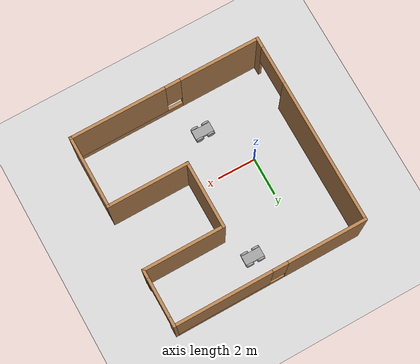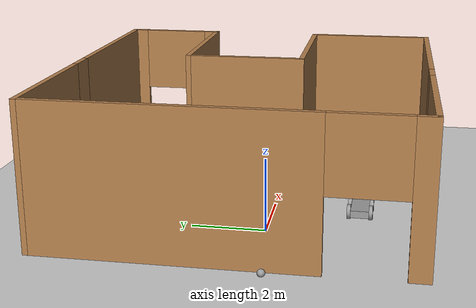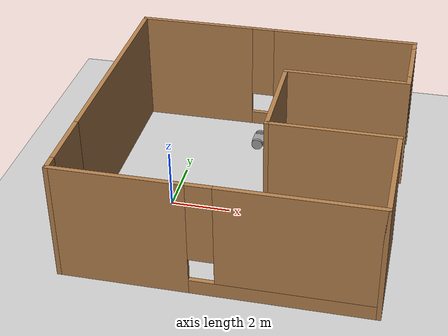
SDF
<sdf version="1.6">
 <world name="default">
  <plugin name="welcome" filename="libwelcome.so"/>
  <light name="sun" type="directional">
   <pose>0 0 10 0 -0 0</pose>
   <diffuse>0.8 0.8 0.8 1</diffuse>
   <specular>0.2 0.2 0.2 1</specular>
   <attenuation>
    <range>1000</range>
    <constant>0.9</constant>
    <linear>0.01</linear>
    <quadratic>0.001</quadratic>
   </attenuation>
   <direction>-0.5 0.1 -0.9</direction>
  </light>
  <model name="ground_plane">
   <static>1</static>
   <link name="link">
    <collision name="collision">
     <geometry><plane><normal>0 0 1</normal><size>100 100</size></plane></geometry>
     <surface>
      <contact><collide_bitmask>65535</collide_bitmask></contact>
      <friction><ode><mu>100</mu><mu2>50</mu2></ode></friction>
     </surface>
    </collision>
    <visual name="visual">
     <cast_shadows>0</cast_shadows>
     <geometry><plane><normal>0 0 1</normal><size>100 100</size></plane></geometry>
     <material>
      <script><uri>file://media/materials/scripts/gazebo.material</uri><name>Gazebo/Grey</name></script>
     </material>
    </visual>
   </link>
  </model>
  <gravity>0 0 -9.8</gravity>
  <magnetic_field>6e-06 2.3e-05 -4.2e-05</magnetic_field>
  <atmosphere type="adiabatic"/>
  <physics name="default_physics" default="0" type="ode">
   <max_step_size>0.001</max_step_size>
   <real_time_factor>1</real_time_factor>
   <real_time_update_rate>1000</real_time_update_rate>
  </physics>
  <scene><ambient>0.4 0.4 0.4 1</ambient><background>0.7 0.7 0.7 1</background><shadows>1</shadows></scene>
  <spherical_coordinates>
   <surface_model>EARTH_WGS84</surface_model>
   <latitude_deg>0</latitude_deg>
   <longitude_deg>0</longitude_deg>
   <elevation>0</elevation>
   <heading_deg>0</heading_deg>
  </spherical_coordinates>
  <model name="proj_mod">
   <pose>2.50882 0.745695 0 0 -0 0</pose>
   <link name="Wall_0">
    <pose>-4.925 0 0 0 0 -1.5708</pose>
    <visual name="Wall_0_Visual_0">
     <pose>-1.28045 0 2 0 -0 0</pose>
     <geometry><box><size>7.43909 0.15 4</size></box></geometry>
     <material>
      <script><uri>file://media/materials/scripts/gazebo.material</uri><name>Gazebo/Wood</name></script>
      <ambient>0.666667 0 0 1</ambient>
     </material>
     <meta><layer>0</layer></meta>
    </visual>
    <collision name="Wall_0_Collision_0">
     <geometry><box><size>7.43909 0.15 4</size></box></geometry>
     <pose>-1.28045 0 2 0 -0 0</pose>
    </collision>
    <visual name="Wall_0_Visual_1">
     <pose>4.71955 0 2 0 -0 0</pose>
     <geometry><box><size>0.560906 0.15 4</size></box></geometry>
     <material>
      <script><uri>file://media/materials/scripts/gazebo.material</uri><name>Gazebo/Wood</name></script>
      <ambient>0.666667 0 0 1</ambient>
     </material>
     <meta><layer>0</layer></meta>
    </visual>
    <collision name="Wall_0_Collision_1">
     <geometry><box><size>0.560906 0.15 4</size></box></geometry>
     <pose>4.71955 0 2 0 -0 0</pose>
    </collision>
    <visual name="Wall_0_Visual_2">
     <pose>3.43909 0 3 0 -0 0</pose>
     <geometry><box><size>2 0.15 2</size></box></geometry>
     <material>
      <script><uri>file://media/materials/scripts/gazebo.material</uri><name>Gazebo/Wood</name></script>
      <ambient>0.666667 0 0 1</ambient>
     </material>
     <meta><layer>0</layer></meta>
    </visual>
    <collision name="Wall_0_Collision_2">
     <geometry><box><size>2 0.15 2</size></box></geometry>
     <pose>3.43909 0 3 0 -0 0</pose>
    </collision>
   </link>
   <link name="Wall_11">
    <collision name="Wall_11_Collision">
     <geometry><box><size>3.5 0.15 4</size></box></geometry>
     <pose>0 0 2 0 -0 0</pose>
    </collision>
    <visual name="Wall_11_Visual">
     <pose>0 0 2 0 -0 0</pose>
     <geometry><box><size>3.5 0.15 4</size></box></geometry>
     <material>
      <script><uri>file://media/materials/scripts/gazebo.material</uri><name>Gazebo/Wood</name></script>
      <ambient>0.333333 0 0 1</ambient>
     </material>
     <meta><layer>0</layer></meta>
    </visual>
    <pose>0.825001 0.4 0 0 0 -1.5708</pose>
   </link>
   <link name="Wall_16">
    <collision name="Wall_16_Collision">
     <geometry><box><size>3.75 0.15 4</size></box></geometry>
     <pose>0 0 2 0 -0 0</pose>
    </collision>
    <visual name="Wall_16_Visual">
     <pose>0 0 2 0 -0 0</pose>
     <geometry><box><size>3.75 0.15 4</size></box></geometry>
     <material>
      <script><uri>file://media/materials/scripts/gazebo.material</uri><name>Gazebo/Wood</name></script>
      <ambient>0.666667 0 0 1</ambient>
     </material>
     <meta><layer>0</layer></meta>
    </visual>
    <pose>4.925 -3.125 0 0 -0 1.5708</pose>
   </link>
   <link name="Wall_19">
    <collision name="Wall_19_Collision">
     <geometry><box><size>4.25 0.15 4</size></box></geometry>
     <pose>0 0 2 0 -0 0</pose>
    </collision>
    <visual name="Wall_19_Visual">
     <pose>0 0 2 0 -0 0</pose>
     <geometry><box><size>4.25 0.15 4</size></box></geometry>
     <material>
      <script><uri>file://media/materials/scripts/gazebo.material</uri><name>Gazebo/Wood</name></script>
      <ambient>0.666667 0 0 1</ambient>
     </material>
     <meta><layer>0</layer></meta>
    </visual>
    <pose>2.875 -1.275 0 0 -0 0</pose>
   </link>
   <link name="Wall_3">
    <pose>0 -4.925 0 0 -0 0</pose>
    <visual name="Wall_3_Visual_0">
     <pose>-2.8988 0 2 0 -0 0</pose>
     <geometry><box><size>4.20241 0.15 4</size></box></geometry>
     <material>
      <script><uri>file://media/materials/scripts/gazebo.material</uri><name>Gazebo/Wood</name></script>
      <ambient>0.666667 0 0 1</ambient>
     </material>
     <meta><layer>0</layer></meta>
    </visual>
    <collision name="Wall_3_Collision_0">
     <geometry><box><size>4.20241 0.15 4</size></box></geometry>
     <pose>-2.8988 0 2 0 -0 0</pose>
    </collision>
    <visual name="Wall_3_Visual_1">
     <pose>2.1012 0 0.25 0 -0 0</pose>
     <geometry><box><size>5.79759 0.15 0.5</size></box></geometry>
     <material>
      <script><uri>file://media/materials/scripts/gazebo.material</uri><name>Gazebo/Wood</name></script>
      <ambient>0.666667 0 0 1</ambient>
     </material>
     <meta><layer>0</layer></meta>
    </visual>
    <collision name="Wall_3_Collision_1">
     <geometry><box><size>5.79759 0.15 0.5</size></box></geometry>
     <pose>2.1012 0 0.25 0 -0 0</pose>
    </collision>
    <visual name="Wall_3_Visual_2">
     <pose>2.5012 0 2.25 0 -0 0</pose>
     <geometry><box><size>4.99759 0.15 3.5</size></box></geometry>
     <material>
      <script><uri>file://media/materials/scripts/gazebo.material</uri><name>Gazebo/Wood</name></script>
      <ambient>0.666667 0 0 1</ambient>
     </material>
     <meta><layer>0</layer></meta>
    </visual>
    <collision name="Wall_3_Collision_2">
     <geometry><box><size>4.99759 0.15 3.5</size></box></geometry>
     <pose>2.5012 0 2.25 0 -0 0</pose>
    </collision>
    <visual name="Wall_3_Visual_3">
     <pose>-0.397593 0 2.65 0 -0 0</pose>
     <geometry><box><size>0.8 0.15 2.7</size></box></geometry>
     <material>
      <script><uri>file://media/materials/scripts/gazebo.material</uri><name>Gazebo/Wood</name></script>
      <ambient>0.666667 0 0 1</ambient>
     </material>
     <meta><layer>0</layer></meta>
    </visual>
    <collision name="Wall_3_Collision_3">
     <geometry><box><size>0.8 0.15 2.7</size></box></geometry>
     <pose>-0.397593 0 2.65 0 -0 0</pose>
    </collision>
   </link>
   <link name="Wall_5">
    <pose>0 4.925 0 0 -0 0</pose>
    <visual name="Wall_5_Visual_0">
     <pose>-2.94691 0 2 0 -0 0</pose>
     <geometry><box><size>4.10618 0.15 4</size></box></geometry>
     <material>
      <script><uri>file://media/materials/scripts/gazebo.material</uri><name>Gazebo/Wood</name></script>
      <ambient>0.666667 0 0 1</ambient>
     </material>
     <meta><layer>0</layer></meta>
    </visual>
    <collision name="Wall_5_Collision_0">
     <geometry><box><size>4.10618 0.15 4</size></box></geometry>
     <pose>-2.94691 0 2 0 -0 0</pose>
    </collision>
    <visual name="Wall_5_Visual_1">
     <pose>2.05309 0 0.25 0 -0 0</pose>
     <geometry><box><size>5.89382 0.15 0.5</size></box></geometry>
     <material>
      <script><uri>file://media/materials/scripts/gazebo.material</uri><name>Gazebo/Wood</name></script>
      <ambient>0.666667 0 0 1</ambient>
     </material>
     <meta><layer>0</layer></meta>
    </visual>
    <collision name="Wall_5_Collision_1">
     <geometry><box><size>5.89382 0.15 0.5</size></box></geometry>
     <pose>2.05309 0 0.25 0 -0 0</pose>
    </collision>
    <visual name="Wall_5_Visual_2">
     <pose>2.45309 0 2.25 0 -0 0</pose>
     <geometry><box><size>5.09382 0.15 3.5</size></box></geometry>
     <material>
      <script><uri>file://media/materials/scripts/gazebo.material</uri><name>Gazebo/Wood</name></script>
      <ambient>0.666667 0 0 1</ambient>
     </material>
     <meta><layer>0</layer></meta>
    </visual>
    <collision name="Wall_5_Collision_2">
     <geometry><box><size>5.09382 0.15 3.5</size></box></geometry>
     <pose>2.45309 0 2.25 0 -0 0</pose>
    </collision>
    <visual name="Wall_5_Visual_3">
     <pose>-0.493816 0 2.65 0 -0 0</pose>
     <geometry><box><size>0.8 0.15 2.7</size></box></geometry>
     <material>
      <script><uri>file://media/materials/scripts/gazebo.material</uri><name>Gazebo/Wood</name></script>
      <ambient>0.666667 0 0 1</ambient>
     </material>
     <meta><layer>0</layer></meta>
    </visual>
    <collision name="Wall_5_Collision_3">
     <geometry><box><size>0.8 0.15 2.7</size></box></geometry>
     <pose>-0.493816 0 2.65 0 -0 0</pose>
    </collision>
   </link>
   <link name="Wall_7">
    <pose>4.925 3.5 0 0 0 -1.5708</pose>
    <visual name="Wall_7_Visual_0">
     <pose>-1.24533 0 2 0 -0 0</pose>
     <geometry><box><size>0.509342 0.15 4</size></box></geometry>
     <material>
      <script><uri>file://media/materials/scripts/gazebo.material</uri><name>Gazebo/Wood</name></script>
      <ambient>0.996078 0.47451 0.0196078 1</ambient>
     </material>
     <meta><layer>0</layer></meta>
    </visual>
    <collision name="Wall_7_Collision_0">
     <geometry><box><size>0.509342 0.15 4</size></box></geometry>
     <pose>-1.24533 0 2 0 -0 0</pose>
    </collision>
    <visual name="Wall_7_Visual_1">
     <pose>1.25467 0 2 0 -0 0</pose>
     <geometry><box><size>0.490658 0.15 4</size></box></geometry>
     <material>
      <script><uri>file://media/materials/scripts/gazebo.material</uri><name>Gazebo/Wood</name></script>
      <ambient>0.996078 0.47451 0.0196078 1</ambient>
     </material>
     <meta><layer>0</layer></meta>
    </visual>
    <collision name="Wall_7_Collision_1">
     <geometry><box><size>0.490658 0.15 4</size></box></geometry>
     <pose>1.25467 0 2 0 -0 0</pose>
    </collision>
    <visual name="Wall_7_Visual_2">
     <pose>0.009342 0 3 0 -0 0</pose>
     <geometry><box><size>2 0.15 2</size></box></geometry>
     <material>
      <script><uri>file://media/materials/scripts/gazebo.material</uri><name>Gazebo/Wood</name></script>
      <ambient>0.996078 0.47451 0.0196078 1</ambient>
     </material>
     <meta><layer>0</layer></meta>
    </visual>
    <collision name="Wall_7_Collision_2">
     <geometry><box><size>2 0.15 2</size></box></geometry>
     <pose>0.009342 0 3 0 -0 0</pose>
    </collision>
   </link>
   <link name="Wall_9">
    <collision name="Wall_9_Collision">
     <geometry><box><size>4.25 0.15 4</size></box></geometry>
     <pose>0 0 2 0 -0 0</pose>
    </collision>
    <visual name="Wall_9_Visual">
     <pose>0 0 2 0 -0 0</pose>
     <geometry><box><size>4.25 0.15 4</size></box></geometry>
     <material>
      <script><uri>file://media/materials/scripts/gazebo.material</uri><name>Gazebo/Wood</name></script>
      <ambient>0.333333 0 0 1</ambient>
     </material>
     <meta><layer>0</layer></meta>
    </visual>
    <pose>2.875 2.075 0 0 -0 3.14159</pose>
   </link>
   <static>1</static>
  </model>
  <model name="final_4w">
   <link name="link_0">
    <inertial>
     <mass>1</mass>
     <inertia>
      <ixx>0.166667</ixx>
      <ixy>0</ixy>
      <ixz>0</ixz>
      <iyy>0.166667</iyy>
      <iyz>0</iyz>
      <izz>0.166667</izz>
     </inertia>
    </inertial>
    <visual name="visual">
     <geometry><box><size>1 0.5 0.2</size></box></geometry>
     <material>
      <lighting>1</lighting>
      <script><uri>file://media/materials/scripts/gazebo.material</uri><name>Gazebo/Grey</name></script>
      <shader type="pixel"><normal_map>__default__</normal_map></shader>
      <ambient>0.3 0.3 0.3 1</ambient>
      <diffuse>0.7 0.7 0.7 1</diffuse>
      <specular>0.01 0.01 0.01 1</specular>
      <emissive>0 0 0 1</emissive>
     </material>
    </visual>
    <collision name="collision">
     <geometry><box><size>1 0.5 0.2</size></box></geometry>
     <surface>
      <friction>
       <ode><mu>1</mu><mu2>1</mu2><fdir1>0 0 0</fdir1><slip1>0</slip1><slip2>0</slip2></ode>
       <torsional>
        <coefficient>1</coefficient>
        <patch_radius>0</patch_radius>
        <surface_radius>0</surface_radius>
        <use_patch_radius>1</use_patch_radius>
        <ode><slip>0</slip></ode>
       </torsional>
      </friction>
      <bounce><restitution_coefficient>0</restitution_coefficient><threshold>1e+06</threshold></bounce>
      <contact>
       <collide_without_contact>0</collide_without_contact>
       <collide_without_contact_bitmask>1</collide_without_contact_bitmask>
       <collide_bitmask>1</collide_bitmask>
       <ode>
        <soft_cfm>0</soft_cfm>
        <soft_erp>0.2</soft_erp>
        <kp>1e+13</kp>
        <kd>1</kd>
        <max_vel>0.01</max_vel>
        <min_depth>0</min_depth>
       </ode>
       <bullet>
        <split_impulse>1</split_impulse>
        <split_impulse_penetration_threshold>-0.01</split_impulse_penetration_threshold>
        <soft_cfm>0</soft_cfm>
        <soft_erp>0.2</soft_erp>
        <kp>1e+13</kp>
        <kd>1</kd>
       </bullet>
      </contact>
     </surface>
    </collision>
   </link>
   <link name="link_1">
    <pose>-0.3 -0.300019 0 1.5707 -0 0</pose>
    <inertial>
     <mass>1</mass>
     <inertia><ixx>0.145833</ixx><ixy>0</ixy><ixz>0</ixz><iyy>0.145833</iyy><iyz>0</iyz><izz>0.125</izz></inertia>
    </inertial>
    <visual name="visual">
     <geometry><cylinder><radius>0.2</radius><length>0.1</length></cylinder></geometry>
     <material>
      <lighting>1</lighting>
      <script><uri>file://media/materials/scripts/gazebo.material</uri><name>Gazebo/Grey</name></script>
      <shader type="pixel"><normal_map>__default__</normal_map></shader>
      <ambient>0.3 0.3 0.3 1</ambient>
      <diffuse>0.7 0.7 0.7 1</diffuse>
      <specular>0.01 0.01 0.01 1</specular>
      <emissive>0 0 0 1</emissive>
     </material>
    </visual>
    <collision name="collision">
     <geometry><cylinder><radius>0.2</radius><length>0.1</length></cylinder></geometry>
     <surface>
      <friction>
       <ode><mu>1</mu><mu2>1</mu2><fdir1>0 0 0</fdir1><slip1>0</slip1><slip2>0</slip2></ode>
       <torsional>
        <coefficient>1</coefficient>
        <patch_radius>0</patch_radius>
        <surface_radius>0</surface_radius>
        <use_patch_radius>1</use_patch_radius>
        <ode><slip>0</slip></ode>
       </torsional>
      </friction>
      <bounce><restitution_coefficient>0</restitution_coefficient><threshold>1e+06</threshold></bounce>
      <contact>
       <collide_without_contact>0</collide_without_contact>
       <collide_without_contact_bitmask>1</collide_without_contact_bitmask>
       <collide_bitmask>1</collide_bitmask>
       <ode>
        <soft_cfm>0</soft_cfm>
        <soft_erp>0.2</soft_erp>
        <kp>1e+13</kp>
        <kd>1</kd>
        <max_vel>0.01</max_vel>
        <min_depth>0</min_depth>
       </ode>
       <bullet>
        <split_impulse>1</split_impulse>
        <split_impulse_penetration_threshold>-0.01</split_impulse_penetration_threshold>
        <soft_cfm>0</soft_cfm>
        <soft_erp>0.2</soft_erp>
        <kp>1e+13</kp>
        <kd>1</kd>
       </bullet>
      </contact>
     </surface>
    </collision>
   </link>
   <link name="link_1_clone">
    <pose>0.3 -0.300019 0 1.5707 -0 0</pose>
    <inertial>
     <mass>1</mass>
     <inertia><ixx>0.145833</ixx><ixy>0</ixy><ixz>0</ixz><iyy>0.145833</iyy><iyz>0</iyz><izz>0.125</izz></inertia>
    </inertial>
    <visual name="visual">
     <geometry><cylinder><radius>0.2</radius><length>0.1</length></cylinder></geometry>
     <material>
      <lighting>1</lighting>
      <script><uri>file://media/materials/scripts/gazebo.material</uri><name>Gazebo/Grey</name></script>
      <shader type="pixel"><normal_map>__default__</normal_map></shader>
      <ambient>0.3 0.3 0.3 1</ambient>
      <diffuse>0.7 0.7 0.7 1</diffuse>
      <specular>0.01 0.01 0.01 1</specular>
      <emissive>0 0 0 1</emissive>
     </material>
    </visual>
    <collision name="collision">
     <geometry><cylinder><radius>0.2</radius><length>0.1</length></cylinder></geometry>
     <surface>
      <friction>
       <ode><mu>1</mu><mu2>1</mu2><fdir1>0 0 0</fdir1><slip1>0</slip1><slip2>0</slip2></ode>
       <torsional>
        <coefficient>1</coefficient>
        <patch_radius>0</patch_radius>
        <surface_radius>0</surface_radius>
        <use_patch_radius>1</use_patch_radius>
        <ode><slip>0</slip></ode>
       </torsional>
      </friction>
      <bounce><restitution_coefficient>0</restitution_coefficient><threshold>1e+06</threshold></bounce>
      <contact>
       <collide_without_contact>0</collide_without_contact>
       <collide_without_contact_bitmask>1</collide_without_contact_bitmask>
       <collide_bitmask>1</collide_bitmask>
       <ode>
        <soft_cfm>0</soft_cfm>
        <soft_erp>0.2</soft_erp>
        <kp>1e+13</kp>
        <kd>1</kd>
        <max_vel>0.01</max_vel>
        <min_depth>0</min_depth>
       </ode>
       <bullet>
        <split_impulse>1</split_impulse>
        <split_impulse_penetration_threshold>-0.01</split_impulse_penetration_threshold>
        <soft_cfm>0</soft_cfm>
        <soft_erp>0.2</soft_erp>
        <kp>1e+13</kp>
        <kd>1</kd>
       </bullet>
      </contact>
     </surface>
    </collision>
   </link>
   <link name="link_1_clone_0">
    <pose>-0.3 0.300019 0 1.5707 -0 0</pose>
    <inertial>
     <mass>1</mass>
     <inertia><ixx>0.145833</ixx><ixy>0</ixy><ixz>0</ixz><iyy>0.145833</iyy><iyz>0</iyz><izz>0.125</izz></inertia>
    </inertial>
    <visual name="visual">
     <geometry><cylinder><radius>0.2</radius><length>0.1</length></cylinder></geometry>
     <material>
      <lighting>1</lighting>
      <script><uri>file://media/materials/scripts/gazebo.material</uri><name>Gazebo/Grey</name></script>
      <shader type="pixel"><normal_map>__default__</normal_map></shader>
      <ambient>0.3 0.3 0.3 1</ambient>
      <diffuse>0.7 0.7 0.7 1</diffuse>
      <specular>0.01 0.01 0.01 1</specular>
      <emissive>0 0 0 1</emissive>
     </material>
    </visual>
    <collision name="collision">
     <geometry><cylinder><radius>0.2</radius><length>0.1</length></cylinder></geometry>
     <surface>
      <friction>
       <ode><mu>1</mu><mu2>1</mu2><fdir1>0 0 0</fdir1><slip1>0</slip1><slip2>0</slip2></ode>
       <torsional>
        <coefficient>1</coefficient>
        <patch_radius>0</patch_radius>
        <surface_radius>0</surface_radius>
        <use_patch_radius>1</use_patch_radius>
        <ode><slip>0</slip></ode>
       </torsional>
      </friction>
      <bounce><restitution_coefficient>0</restitution_coefficient><threshold>1e+06</threshold></bounce>
      <contact>
       <collide_without_contact>0</collide_without_contact>
       <collide_without_contact_bitmask>1</collide_without_contact_bitmask>
       <collide_bitmask>1</collide_bitmask>
       <ode>
        <soft_cfm>0</soft_cfm>
        <soft_erp>0.2</soft_erp>
        <kp>1e+13</kp>
        <kd>1</kd>
        <max_vel>0.01</max_vel>
        <min_depth>0</min_depth>
       </ode>
       <bullet>
        <split_impulse>1</split_impulse>
        <split_impulse_penetration_threshold>-0.01</split_impulse_penetration_threshold>
        <soft_cfm>0</soft_cfm>
        <soft_erp>0.2</soft_erp>
        <kp>1e+13</kp>
        <kd>1</kd>
       </bullet>
      </contact>
     </surface>
    </collision>
   </link>
   <link name="link_1_clone_1">
    <pose>0.3 0.300019 0 1.5707 -0 0</pose>
    <inertial>
     <mass>1</mass>
     <inertia><ixx>0.145833</ixx><ixy>0</ixy><ixz>0</ixz><iyy>0.145833</iyy><iyz>0</iyz><izz>0.125</izz></inertia>
    </inertial>
    <visual name="visual">
     <geometry><cylinder><radius>0.2</radius><length>0.1</length></cylinder></geometry>
     <material>
      <lighting>1</lighting>
      <script><uri>file://media/materials/scripts/gazebo.material</uri><name>Gazebo/Grey</name></script>
      <shader type="pixel"><normal_map>__default__</normal_map></shader>
      <ambient>0.3 0.3 0.3 1</ambient>
      <diffuse>0.7 0.7 0.7 1</diffuse>
      <specular>0.01 0.01 0.01 1</specular>
      <emissive>0 0 0 1</emissive>
     </material>
    </visual>
    <collision name="collision">
     <geometry><cylinder><radius>0.2</radius><length>0.1</length></cylinder></geometry>
     <surface>
      <friction>
       <ode><mu>1</mu><mu2>1</mu2><fdir1>0 0 0</fdir1><slip1>0</slip1><slip2>0</slip2></ode>
       <torsional>
        <coefficient>1</coefficient>
        <patch_radius>0</patch_radius>
        <surface_radius>0</surface_radius>
        <use_patch_radius>1</use_patch_radius>
        <ode><slip>0</slip></ode>
       </torsional>
      </friction>
      <bounce><restitution_coefficient>0</restitution_coefficient><threshold>1e+06</threshold></bounce>
      <contact>
       <collide_without_contact>0</collide_without_contact>
       <collide_without_contact_bitmask>1</collide_without_contact_bitmask>
       <collide_bitmask>1</collide_bitmask>
       <ode>
        <soft_cfm>0</soft_cfm>
        <soft_erp>0.2</soft_erp>
        <kp>1e+13</kp>
        <kd>1</kd>
        <max_vel>0.01</max_vel>
        <min_depth>0</min_depth>
       </ode>
       <bullet>
        <split_impulse>1</split_impulse>
        <split_impulse_penetration_threshold>-0.01</split_impulse_penetration_threshold>
        <soft_cfm>0</soft_cfm>
        <soft_erp>0.2</soft_erp>
        <kp>1e+13</kp>
        <kd>1</kd>
       </bullet>
      </contact>
     </surface>
    </collision>
   </link>
   <joint name="link_0_JOINT_0" type="revolute">
    <parent>link_0</parent>
    <child>link_1_clone_0</child>
    <axis>
     <xyz>0 0 1</xyz>
     <use_parent_model_frame>0</use_parent_model_frame>
     <limit>
      <lower>-1.79769e+308</lower>
      <upper>1.79769e+308</upper>
      <effort>-1</effort>
      <velocity>-1</velocity>
     </limit>
     <dynamics>
      <spring_reference>0</spring_reference>
      <spring_stiffness>0</spring_stiffness>
      <damping>0</damping>
     </dynamics>
    </axis>
    <physics>
     <ode><limit><cfm>0</cfm><erp>0.2</erp></limit><suspension><cfm>0</cfm><erp>0.2</erp></suspension></ode>
    </physics>
   </joint>
   <joint name="link_0_JOINT_1" type="revolute">
    <parent>link_0</parent>
    <child>link_1_clone_1</child>
    <axis>
     <xyz>0 0 1</xyz>
     <use_parent_model_frame>0</use_parent_model_frame>
     <limit>
      <lower>-1.79769e+308</lower>
      <upper>1.79769e+308</upper>
      <effort>-1</effort>
      <velocity>-1</velocity>
     </limit>
     <dynamics>
      <spring_reference>0</spring_reference>
      <spring_stiffness>0</spring_stiffness>
      <damping>0</damping>
     </dynamics>
    </axis>
    <physics>
     <ode><limit><cfm>0</cfm><erp>0.2</erp></limit><suspension><cfm>0</cfm><erp>0.2</erp></suspension></ode>
    </physics>
   </joint>
   <joint name="link_0_JOINT_2" type="revolute">
    <parent>link_0</parent>
    <child>link_1_clone</child>
    <axis>
     <xyz>1 0 0</xyz>
     <use_parent_model_frame>0</use_parent_model_frame>
     <limit>
      <lower>-1.79769e+308</lower>
      <upper>1.79769e+308</upper>
      <effort>-1</effort>
      <velocity>-1</velocity>
     </limit>
     <dynamics>
      <spring_reference>0</spring_reference>
      <spring_stiffness>0</spring_stiffness>
      <damping>0</damping>
     </dynamics>
    </axis>
    <physics>
     <ode><limit><cfm>0</cfm><erp>0.2</erp></limit><suspension><cfm>0</cfm><erp>0.2</erp></suspension></ode>
    </physics>
   </joint>
   <joint name="link_0_JOINT_3" type="revolute">
    <parent>link_0</parent>
    <child>link_1</child>
    <axis>
     <xyz>1 0 0</xyz>
     <use_parent_model_frame>0</use_parent_model_frame>
     <limit>
      <lower>-1.79769e+308</lower>
      <upper>1.79769e+308</upper>
      <effort>-1</effort>
      <velocity>-1</velocity>
     </limit>
     <dynamics>
      <spring_reference>0</spring_reference>
      <spring_stiffness>0</spring_stiffness>
      <damping>0</damping>
     </dynamics>
    </axis>
    <physics>
     <ode><limit><cfm>0</cfm><erp>0.2</erp></limit><suspension><cfm>0</cfm><erp>0.2</erp></suspension></ode>
    </physics>
   </joint>
   <static>0</static>
   <pose>1.53274 -2.42737 0.200001 7e-06 -4e-06 -0.015317</pose>
  </model>
  <model name="final_4w_clone">
   <link name="link_0">
    <inertial>
     <mass>1</mass>
     <inertia>
      <ixx>0.166667</ixx>
      <ixy>0</ixy>
      <ixz>0</ixz>
      <iyy>0.166667</iyy>
      <iyz>0</iyz>
      <izz>0.166667</izz>
     </inertia>
    </inertial>
    <visual name="visual">
     <geometry><box><size>1 0.5 0.2</size></box></geometry>
     <material>
      <lighting>1</lighting>
      <script><uri>file://media/materials/scripts/gazebo.material</uri><name>Gazebo/Grey</name></script>
      <shader type="pixel"><normal_map>__default__</normal_map></shader>
      <ambient>0.3 0.3 0.3 1</ambient>
      <diffuse>0.7 0.7 0.7 1</diffuse>
      <specular>0.01 0.01 0.01 1</specular>
      <emissive>0 0 0 1</emissive>
     </material>
    </visual>
    <collision name="collision">
     <geometry><box><size>1 0.5 0.2</size></box></geometry>
     <surface>
      <friction>
       <ode><mu>1</mu><mu2>1</mu2><fdir1>0 0 0</fdir1><slip1>0</slip1><slip2>0</slip2></ode>
       <torsional>
        <coefficient>1</coefficient>
        <patch_radius>0</patch_radius>
        <surface_radius>0</surface_radius>
        <use_patch_radius>1</use_patch_radius>
        <ode><slip>0</slip></ode>
       </torsional>
      </friction>
      <bounce><restitution_coefficient>0</restitution_coefficient><threshold>1e+06</threshold></bounce>
      <contact>
       <collide_without_contact>0</collide_without_contact>
       <collide_without_contact_bitmask>1</collide_without_contact_bitmask>
       <collide_bitmask>1</collide_bitmask>
       <ode>
        <soft_cfm>0</soft_cfm>
        <soft_erp>0.2</soft_erp>
        <kp>1e+13</kp>
        <kd>1</kd>
        <max_vel>0.01</max_vel>
        <min_depth>0</min_depth>
       </ode>
       <bullet>
        <split_impulse>1</split_impulse>
        <split_impulse_penetration_threshold>-0.01</split_impulse_penetration_threshold>
        <soft_cfm>0</soft_cfm>
        <soft_erp>0.2</soft_erp>
        <kp>1e+13</kp>
        <kd>1</kd>
       </bullet>
      </contact>
     </surface>
    </collision>
   </link>
   <link name="link_1">
    <pose>-0.3 -0.300019 0 1.5707 -0 0</pose>
    <inertial>
     <mass>1</mass>
     <inertia><ixx>0.145833</ixx><ixy>0</ixy><ixz>0</ixz><iyy>0.145833</iyy><iyz>0</iyz><izz>0.125</izz></inertia>
    </inertial>
    <visual name="visual">
     <geometry><cylinder><radius>0.2</radius><length>0.1</length></cylinder></geometry>
     <material>
      <lighting>1</lighting>
      <script><uri>file://media/materials/scripts/gazebo.material</uri><name>Gazebo/Grey</name></script>
      <shader type="pixel"><normal_map>__default__</normal_map></shader>
      <ambient>0.3 0.3 0.3 1</ambient>
      <diffuse>0.7 0.7 0.7 1</diffuse>
      <specular>0.01 0.01 0.01 1</specular>
      <emissive>0 0 0 1</emissive>
     </material>
    </visual>
    <collision name="collision">
     <geometry><cylinder><radius>0.2</radius><length>0.1</length></cylinder></geometry>
     <surface>
      <friction>
       <ode><mu>1</mu><mu2>1</mu2><fdir1>0 0 0</fdir1><slip1>0</slip1><slip2>0</slip2></ode>
       <torsional>
        <coefficient>1</coefficient>
        <patch_radius>0</patch_radius>
        <surface_radius>0</surface_radius>
        <use_patch_radius>1</use_patch_radius>
        <ode><slip>0</slip></ode>
       </torsional>
      </friction>
      <bounce><restitution_coefficient>0</restitution_coefficient><threshold>1e+06</threshold></bounce>
      <contact>
       <collide_without_contact>0</collide_without_contact>
       <collide_without_contact_bitmask>1</collide_without_contact_bitmask>
       <collide_bitmask>1</collide_bitmask>
       <ode>
        <soft_cfm>0</soft_cfm>
        <soft_erp>0.2</soft_erp>
        <kp>1e+13</kp>
        <kd>1</kd>
        <max_vel>0.01</max_vel>
        <min_depth>0</min_depth>
       </ode>
       <bullet>
        <split_impulse>1</split_impulse>
        <split_impulse_penetration_threshold>-0.01</split_impulse_penetration_threshold>
        <soft_cfm>0</soft_cfm>
        <soft_erp>0.2</soft_erp>
        <kp>1e+13</kp>
        <kd>1</kd>
       </bullet>
      </contact>
     </surface>
    </collision>
   </link>
   <link name="link_1_clone">
    <pose>0.3 -0.300019 0 1.5707 -0 0</pose>
    <inertial>
     <mass>1</mass>
     <inertia><ixx>0.145833</ixx><ixy>0</ixy><ixz>0</ixz><iyy>0.145833</iyy><iyz>0</iyz><izz>0.125</izz></inertia>
    </inertial>
    <visual name="visual">
     <geometry><cylinder><radius>0.2</radius><length>0.1</length></cylinder></geometry>
     <material>
      <lighting>1</lighting>
      <script><uri>file://media/materials/scripts/gazebo.material</uri><name>Gazebo/Grey</name></script>
      <shader type="pixel"><normal_map>__default__</normal_map></shader>
      <ambient>0.3 0.3 0.3 1</ambient>
      <diffuse>0.7 0.7 0.7 1</diffuse>
      <specular>0.01 0.01 0.01 1</specular>
      <emissive>0 0 0 1</emissive>
     </material>
    </visual>
    <collision name="collision">
     <geometry><cylinder><radius>0.2</radius><length>0.1</length></cylinder></geometry>
     <surface>
      <friction>
       <ode><mu>1</mu><mu2>1</mu2><fdir1>0 0 0</fdir1><slip1>0</slip1><slip2>0</slip2></ode>
       <torsional>
        <coefficient>1</coefficient>
        <patch_radius>0</patch_radius>
        <surface_radius>0</surface_radius>
        <use_patch_radius>1</use_patch_radius>
        <ode><slip>0</slip></ode>
       </torsional>
      </friction>
      <bounce><restitution_coefficient>0</restitution_coefficient><threshold>1e+06</threshold></bounce>
      <contact>
       <collide_without_contact>0</collide_without_contact>
       <collide_without_contact_bitmask>1</collide_without_contact_bitmask>
       <collide_bitmask>1</collide_bitmask>
       <ode>
        <soft_cfm>0</soft_cfm>
        <soft_erp>0.2</soft_erp>
        <kp>1e+13</kp>
        <kd>1</kd>
        <max_vel>0.01</max_vel>
        <min_depth>0</min_depth>
       </ode>
       <bullet>
        <split_impulse>1</split_impulse>
        <split_impulse_penetration_threshold>-0.01</split_impulse_penetration_threshold>
        <soft_cfm>0</soft_cfm>
        <soft_erp>0.2</soft_erp>
        <kp>1e+13</kp>
        <kd>1</kd>
       </bullet>
      </contact>
     </surface>
    </collision>
   </link>
   <link name="link_1_clone_0">
    <pose>-0.3 0.300019 0 1.5707 -0 0</pose>
    <inertial>
     <mass>1</mass>
     <inertia><ixx>0.145833</ixx><ixy>0</ixy><ixz>0</ixz><iyy>0.145833</iyy><iyz>0</iyz><izz>0.125</izz></inertia>
    </inertial>
    <visual name="visual">
     <geometry><cylinder><radius>0.2</radius><length>0.1</length></cylinder></geometry>
     <material>
      <lighting>1</lighting>
      <script><uri>file://media/materials/scripts/gazebo.material</uri><name>Gazebo/Grey</name></script>
      <shader type="pixel"><normal_map>__default__</normal_map></shader>
      <ambient>0.3 0.3 0.3 1</ambient>
      <diffuse>0.7 0.7 0.7 1</diffuse>
      <specular>0.01 0.01 0.01 1</specular>
      <emissive>0 0 0 1</emissive>
     </material>
    </visual>
    <collision name="collision">
     <geometry><cylinder><radius>0.2</radius><length>0.1</length></cylinder></geometry>
     <surface>
      <friction>
       <ode><mu>1</mu><mu2>1</mu2><fdir1>0 0 0</fdir1><slip1>0</slip1><slip2>0</slip2></ode>
       <torsional>
        <coefficient>1</coefficient>
        <patch_radius>0</patch_radius>
        <surface_radius>0</surface_radius>
        <use_patch_radius>1</use_patch_radius>
        <ode><slip>0</slip></ode>
       </torsional>
      </friction>
      <bounce><restitution_coefficient>0</restitution_coefficient><threshold>1e+06</threshold></bounce>
      <contact>
       <collide_without_contact>0</collide_without_contact>
       <collide_without_contact_bitmask>1</collide_without_contact_bitmask>
       <collide_bitmask>1</collide_bitmask>
       <ode>
        <soft_cfm>0</soft_cfm>
        <soft_erp>0.2</soft_erp>
        <kp>1e+13</kp>
        <kd>1</kd>
        <max_vel>0.01</max_vel>
        <min_depth>0</min_depth>
       </ode>
       <bullet>
        <split_impulse>1</split_impulse>
        <split_impulse_penetration_threshold>-0.01</split_impulse_penetration_threshold>
        <soft_cfm>0</soft_cfm>
        <soft_erp>0.2</soft_erp>
        <kp>1e+13</kp>
        <kd>1</kd>
       </bullet>
      </contact>
     </surface>
    </collision>
   </link>
   <link name="link_1_clone_1">
    <pose>0.3 0.300019 0 1.5707 -0 0</pose>
    <inertial>
     <mass>1</mass>
     <inertia><ixx>0.145833</ixx><ixy>0</ixy><ixz>0</ixz><iyy>0.145833</iyy><iyz>0</iyz><izz>0.125</izz></inertia>
    </inertial>
    <visual name="visual">
     <geometry><cylinder><radius>0.2</radius><length>0.1</length></cylinder></geometry>
     <material>
      <lighting>1</lighting>
      <script><uri>file://media/materials/scripts/gazebo.material</uri><name>Gazebo/Grey</name></script>
      <shader type="pixel"><normal_map>__default__</normal_map></shader>
      <ambient>0.3 0.3 0.3 1</ambient>
      <diffuse>0.7 0.7 0.7 1</diffuse>
      <specular>0.01 0.01 0.01 1</specular>
      <emissive>0 0 0 1</emissive>
     </material>
    </visual>
    <collision name="collision">
     <geometry><cylinder><radius>0.2</radius><length>0.1</length></cylinder></geometry>
     <surface>
      <friction>
       <ode><mu>1</mu><mu2>1</mu2><fdir1>0 0 0</fdir1><slip1>0</slip1><slip2>0</slip2></ode>
       <torsional>
        <coefficient>1</coefficient>
        <patch_radius>0</patch_radius>
        <surface_radius>0</surface_radius>
        <use_patch_radius>1</use_patch_radius>
        <ode><slip>0</slip></ode>
       </torsional>
      </friction>
      <bounce><restitution_coefficient>0</restitution_coefficient><threshold>1e+06</threshold></bounce>
      <contact>
       <collide_without_contact>0</collide_without_contact>
       <collide_without_contact_bitmask>1</collide_without_contact_bitmask>
       <collide_bitmask>1</collide_bitmask>
       <ode>
        <soft_cfm>0</soft_cfm>
        <soft_erp>0.2</soft_erp>
        <kp>1e+13</kp>
        <kd>1</kd>
        <max_vel>0.01</max_vel>
        <min_depth>0</min_depth>
       </ode>
       <bullet>
        <split_impulse>1</split_impulse>
        <split_impulse_penetration_threshold>-0.01</split_impulse_penetration_threshold>
        <soft_cfm>0</soft_cfm>
        <soft_erp>0.2</soft_erp>
        <kp>1e+13</kp>
        <kd>1</kd>
       </bullet>
      </contact>
     </surface>
    </collision>
   </link>
   <joint name="link_0_JOINT_0" type="revolute">
    <parent>link_0</parent>
    <child>link_1_clone_0</child>
    <axis>
     <xyz>0 0 1</xyz>
     <use_parent_model_frame>0</use_parent_model_frame>
     <limit>
      <lower>-1.79769e+308</lower>
      <upper>1.79769e+308</upper>
      <effort>-1</effort>
      <velocity>-1</velocity>
     </limit>
     <dynamics>
      <spring_reference>0</spring_reference>
      <spring_stiffness>0</spring_stiffness>
      <damping>0</damping>
     </dynamics>
    </axis>
    <physics>
     <ode><limit><cfm>0</cfm><erp>0.2</erp></limit><suspension><cfm>0</cfm><erp>0.2</erp></suspension></ode>
    </physics>
   </joint>
   <joint name="link_0_JOINT_1" type="revolute">
    <parent>link_0</parent>
    <child>link_1_clone_1</child>
    <axis>
     <xyz>0 0 1</xyz>
     <use_parent_model_frame>0</use_parent_model_frame>
     <limit>
      <lower>-1.79769e+308</lower>
      <upper>1.79769e+308</upper>
      <effort>-1</effort>
      <velocity>-1</velocity>
     </limit>
     <dynamics>
      <spring_reference>0</spring_reference>
      <spring_stiffness>0</spring_stiffness>
      <damping>0</damping>
     </dynamics>
    </axis>
    <physics>
     <ode><limit><cfm>0</cfm><erp>0.2</erp></limit><suspension><cfm>0</cfm><erp>0.2</erp></suspension></ode>
    </physics>
   </joint>
   <joint name="link_0_JOINT_2" type="revolute">
    <parent>link_0</parent>
    <child>link_1_clone</child>
    <axis>
     <xyz>1 0 0</xyz>
     <use_parent_model_frame>0</use_parent_model_frame>
     <limit>
      <lower>-1.79769e+308</lower>
      <upper>1.79769e+308</upper>
      <effort>-1</effort>
      <velocity>-1</velocity>
     </limit>
     <dynamics>
      <spring_reference>0</spring_reference>
      <spring_stiffness>0</spring_stiffness>
      <damping>0</damping>
     </dynamics>
    </axis>
    <physics>
     <ode><limit><cfm>0</cfm><erp>0.2</erp></limit><suspension><cfm>0</cfm><erp>0.2</erp></suspension></ode>
    </physics>
   </joint>
   <joint name="link_0_JOINT_3" type="revolute">
    <parent>link_0</parent>
    <child>link_1</child>
    <axis>
     <xyz>1 0 0</xyz>
     <use_parent_model_frame>0</use_parent_model_frame>
     <limit>
      <lower>-1.79769e+308</lower>
      <upper>1.79769e+308</upper>
      <effort>-1</effort>
      <velocity>-1</velocity>
     </limit>
     <dynamics>
      <spring_reference>0</spring_reference>
      <spring_stiffness>0</spring_stiffness>
      <damping>0</damping>
     </dynamics>
    </axis>
    <physics>
     <ode><limit><cfm>0</cfm><erp>0.2</erp></limit><suspension><cfm>0</cfm><erp>0.2</erp></suspension></ode>
    </physics>
   </joint>
   <static>0</static>
   <pose>2.45895 4.17222 0.200001 7e-06 -4e-06 -0.014594</pose>
  </model>
  <model name="my_ball">
   <link name="link_0">
    <inertial>
     <mass>1</mass>
     <inertia><ixx>0.1</ixx><ixy>0</ixy><ixz>0</ixz><iyy>0.1</iyy><iyz>0</iyz><izz>0.1</izz></inertia>
    </inertial>
    <visual name="visual">
     <geometry><sphere><radius>0.1</radius></sphere></geometry>
     <material>
      <lighting>1</lighting>
      <script><uri>file://media/materials/scripts/gazebo.material</uri><name>Gazebo/Grey</name></script>
      <shader type="pixel"><normal_map>__default__</normal_map></shader>
      <ambient>1 1 1 1</ambient>
      <diffuse>1 1 1 1</diffuse>
      <specular>1 1 1 1</specular>
      <emissive>1 1 1 1</emissive>
     </material>
    </visual>
    <collision name="collision">
     <geometry><sphere><radius>0.1</radius></sphere></geometry>
     <surface>
      <friction>
       <ode><mu>1</mu><mu2>1</mu2><fdir1>0 0 0</fdir1><slip1>0</slip1><slip2>0</slip2></ode>
       <torsional>
        <coefficient>1</coefficient>
        <patch_radius>0</patch_radius>
        <surface_radius>0</surface_radius>
        <use_patch_radius>1</use_patch_radius>
        <ode><slip>0</slip></ode>
       </torsional>
      </friction>
      <bounce><restitution_coefficient>0</restitution_coefficient><threshold>1e+06</threshold></bounce>
      <contact>
       <collide_without_contact>0</collide_without_contact>
       <collide_without_contact_bitmask>1</collide_without_contact_bitmask>
       <collide_bitmask>1</collide_bitmask>
       <ode>
        <soft_cfm>0</soft_cfm>
        <soft_erp>0.2</soft_erp>
        <kp>1e+13</kp>
        <kd>1</kd>
        <max_vel>0.01</max_vel>
        <min_depth>0</min_depth>
       </ode>
       <bullet>
        <split_impulse>1</split_impulse>
        <split_impulse_penetration_threshold>-0.01</split_impulse_penetration_threshold>
        <soft_cfm>0</soft_cfm>
        <soft_erp>0.2</soft_erp>
        <kp>1e+13</kp>
        <kd>1</kd>
       </bullet>
      </contact>
     </surface>
    </collision>
   </link>
   <static>0</static>
   <pose>-2.72108 -0.294487 0.1 0 -0 0</pose>
  </model>
  <plugin filename="libcollision_map_creator.so" name="collision_map_creator"/>
 </world>
</sdf>
